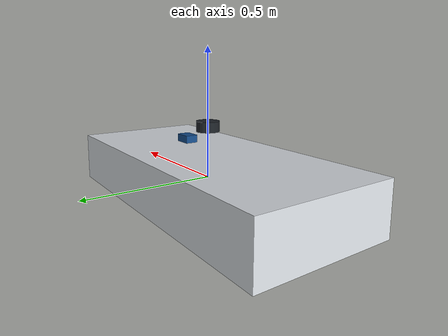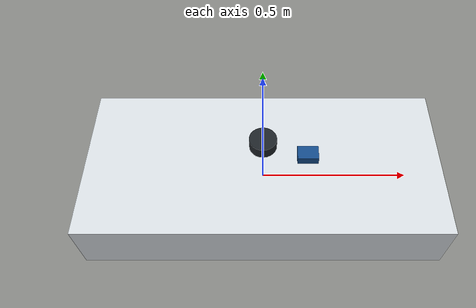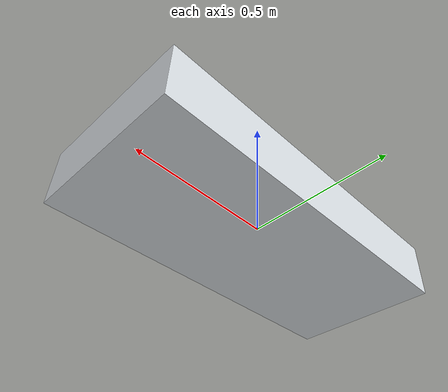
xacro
<?xml version="1.0" encoding="utf-8"?>
<robot name="zero_usv_sensors" xmlns:xacro="http://www.ros.org/wiki/xacro">
  <!--
    This xacro is the ROS-side TF/robot_description companion for the phase-4
    Gazebo smoke model. The Gazebo physics/sensor model still lives in
    models/zero_usv/model.sdf.
  -->

  <xacro:property name="hull_size" value="1.20 0.55 0.20" />
  <xacro:property name="lidar_radius" value="0.045" />
  <xacro:property name="lidar_height" value="0.04" />
  <xacro:property name="lidar_xyz" value="0 0 0.20" />
  <xacro:property name="imu_size" value="0.07 0.05 0.03" />
  <xacro:property name="imu_xyz" value="0.15 0 0.13" />

  <link name="zero_base_link">
    <visual>
      <geometry>
        <box size="${hull_size}" />
      </geometry>
      <material name="hull_gray">
        <color rgba="0.86 0.88 0.90 1" />
      </material>
    </visual>
    <collision>
      <geometry>
        <box size="${hull_size}" />
      </geometry>
    </collision>
  </link>

  <link name="lidar_link">
    <visual>
      <geometry>
        <cylinder radius="${lidar_radius}" length="${lidar_height}" />
      </geometry>
      <material name="lidar_dark">
        <color rgba="0.12 0.14 0.16 1" />
      </material>
    </visual>
    <collision>
      <geometry>
        <cylinder radius="${lidar_radius}" length="${lidar_height}" />
      </geometry>
    </collision>
  </link>
  <joint name="zero_lidar_fixed_joint" type="fixed">
    <origin xyz="${lidar_xyz}" rpy="0 0 0" />
    <parent link="zero_base_link" />
    <child link="lidar_link" />
  </joint>

  <!-- Match the physical ydlidar_ros2 default scan frame while keeping lidar_link as the mount frame. -->
  <link name="laser_frame" />
  <joint name="zero_laser_frame_fixed_joint" type="fixed">
    <origin xyz="0 0 0" rpy="0 0 0" />
    <parent link="lidar_link" />
    <child link="laser_frame" />
  </joint>

  <link name="imu_link">
    <visual>
      <geometry>
        <box size="${imu_size}" />
      </geometry>
      <material name="imu_blue">
        <color rgba="0.08 0.30 0.55 1" />
      </material>
    </visual>
    <collision>
      <geometry>
        <box size="${imu_size}" />
      </geometry>
    </collision>
  </link>
  <joint name="zero_imu_fixed_joint" type="fixed">
    <origin xyz="${imu_xyz}" rpy="0 0 0" />
    <parent link="zero_base_link" />
    <child link="imu_link" />
  </joint>
</robot>
